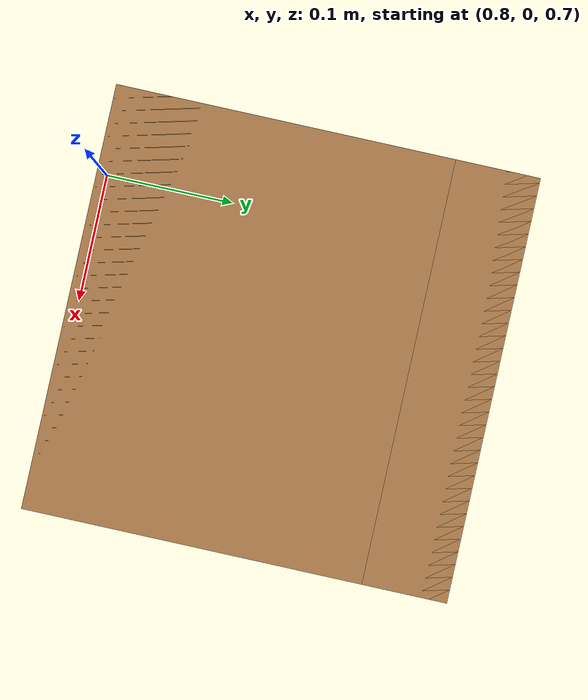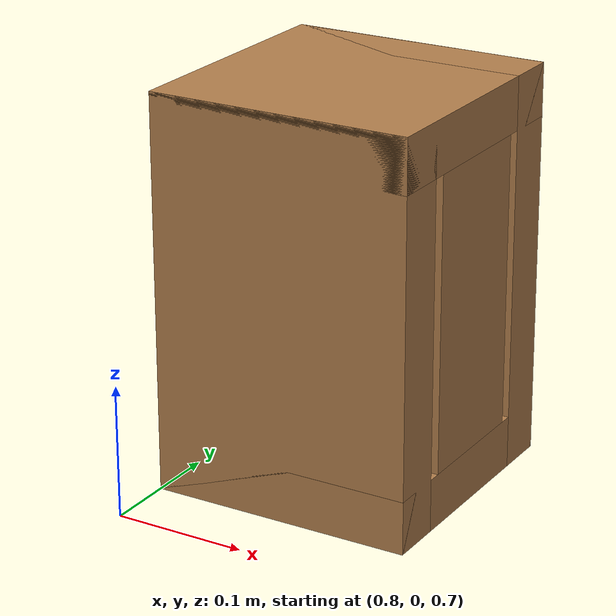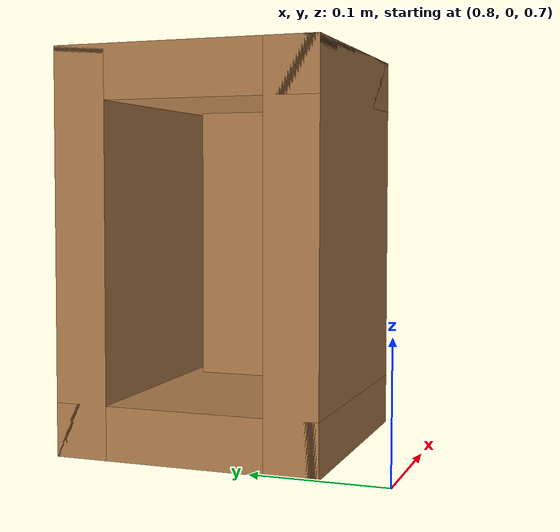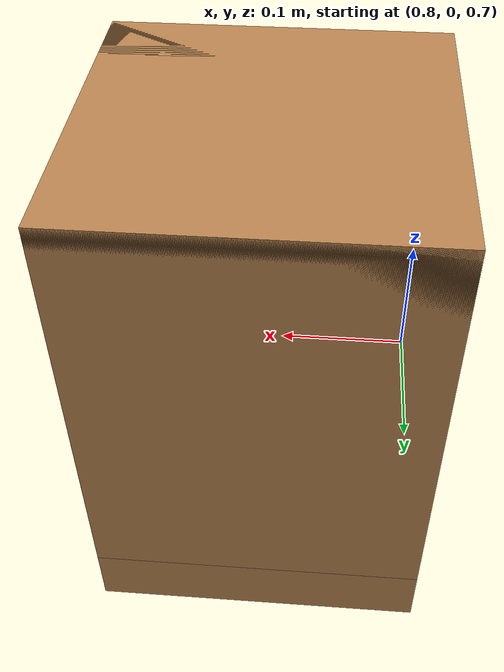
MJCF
<mujoco model="shelf">
	<asset>
		<texture file="../textures/light-wood.png" type="cube" name="light-wood" />
		<material name="MatLightWood" texture="light-wood" texrepeat="3 3" specular="0.4" shininess="0.1" />
	</asset>
	<worldbody>
		<body>
			<body name="object" pos="0.9 0.15 0.6" quat = "1 0 0 1">
				<body name="shelf" pos="0 0 0.25">
					<geom type="box" size="0.1 0.1 0.02" pos="0 0 -0.13" material="MatLightWood" group="0" />
					<geom type="box" size="0.1 0.1 0.02" pos="0 0 0.13" material="MatLightWood" group="0" />
					<geom type="box" size="0.02 0.1 0.15" pos="-0.08 0 0" material="MatLightWood" group="0" />
					<geom type="box" size="0.02 0.1 0.15" pos="0.08 0 0" material="MatLightWood" group="0" />
					<geom type="box" size="0.05 0.02 0.11" pos="0 -0.08 0" material="MatLightWood" group="0" />
				</body>
				<inertial pos="0 0 0" mass="10" diaginertia="0.01 0.01 0.01" />
			</body>
		</body>
	</worldbody>
</mujoco>
